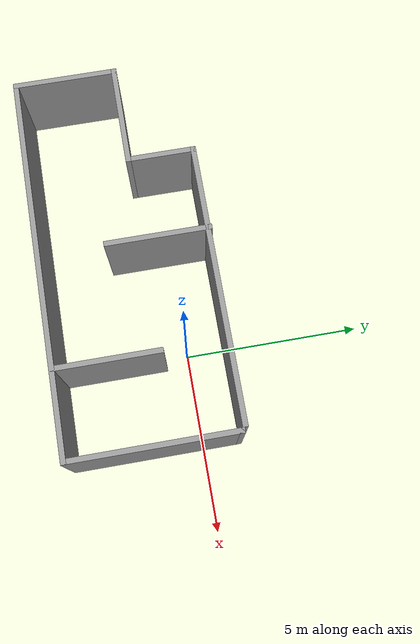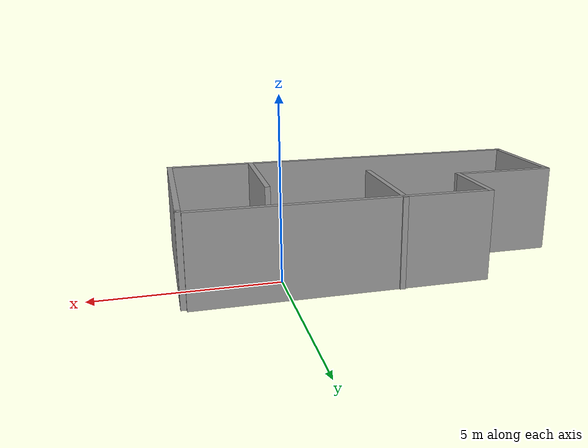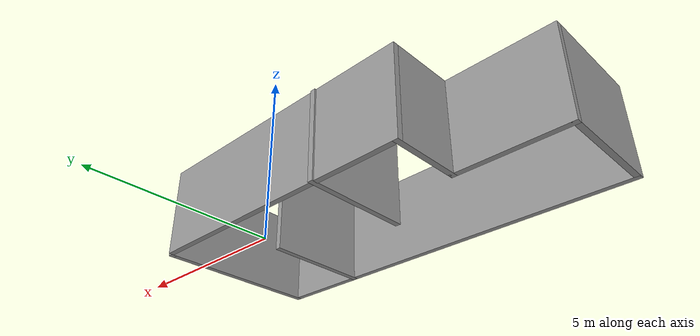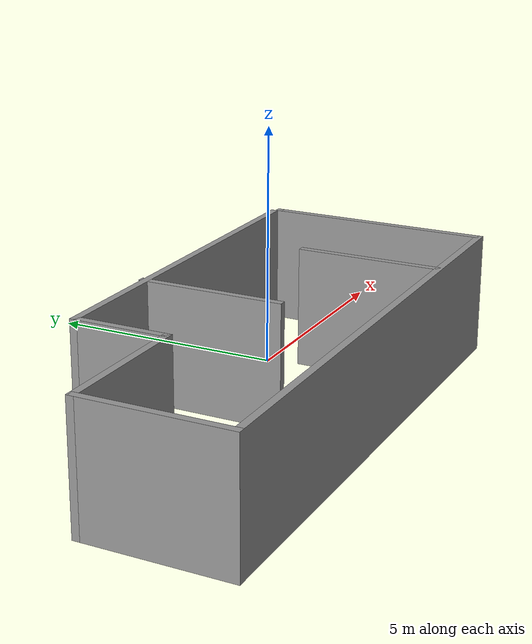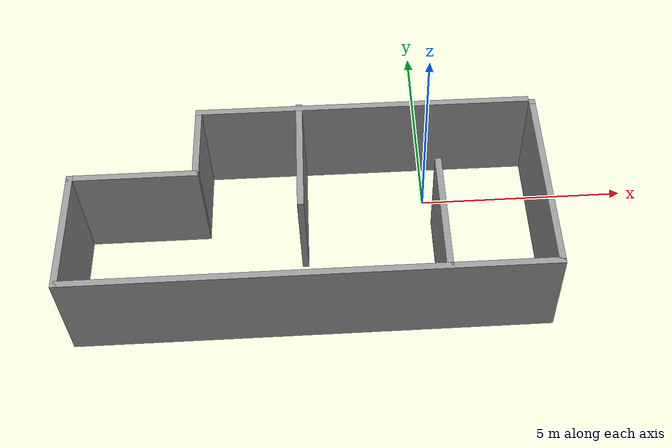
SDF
<?xml version='1.0'?>
<sdf version='1.7'>
  <model name='room'>
    <pose>-2.77075 -1.21274 0 0 -0 0</pose>
    <link name='Wall_1'>
      <collision name='Wall_1_Collision'>
        <geometry>
          <box>
            <size>8 0.15 2.5</size>
          </box>
        </geometry>
        <pose>0 0 1.25 0 -0 0</pose>
      </collision>
      <visual name='Wall_1_Visual'>
        <pose>0 0 1.25 0 -0 0</pose>
        <geometry>
          <box>
            <size>8 0.15 2.5</size>
          </box>
        </geometry>
        <material>
          <script>
            <uri>file://media/materials/scripts/gazebo.material</uri>
            <name>Gazebo/Grey</name>
          </script>
          <ambient>1 1 1 1</ambient>
        </material>
        <meta>
          <layer>0</layer>
        </meta>
      </visual>
      <pose>1.35 2.32884 0 0 -0 3.14159</pose>
    </link>
    <link name='Wall_11'>
      <collision name='Wall_11_Collision'>
        <geometry>
          <box>
            <size>3 0.15 2.5</size>
          </box>
        </geometry>
        <pose>0 0 1.25 0 -0 0</pose>
      </collision>
      <visual name='Wall_11_Visual'>
        <pose>0 0 1.25 0 -0 0</pose>
        <geometry>
          <box>
            <size>3 0.15 2.5</size>
          </box>
        </geometry>
        <material>
          <script>
            <uri>file://media/materials/scripts/gazebo.material</uri>
            <name>Gazebo/Grey</name>
          </script>
          <ambient>1 1 1 1</ambient>
        </material>
        <meta>
          <layer>0</layer>
        </meta>
      </visual>
      <pose>-0.185568 0.946157 0 0 -0 -1.5708</pose>
    </link>
    <link name='Wall_14'>
      <collision name='Wall_14_Collision'>
        <geometry>
          <box>
            <size>3 0.15 2.5</size>
          </box>
        </geometry>
        <pose>0 0 1.25 0 -0 0</pose>
      </collision>
      <visual name='Wall_14_Visual'>
        <pose>0 0 1.25 0 -0 0</pose>
        <geometry>
          <box>
            <size>3 0.15 2.5</size>
          </box>
        </geometry>
        <material>
          <script>
            <uri>file://media/materials/scripts/gazebo.material</uri>
            <name>Gazebo/Grey</name>
          </script>
          <ambient>1 1 1 1</ambient>
        </material>
        <meta>
          <layer>0</layer>
        </meta>
      </visual>
      <pose>3.00166 -0.911943 0 0 -0 1.5708</pose>
    </link>
    <link name='Wall_2'>
      <collision name='Wall_2_Collision'>
        <geometry>
          <box>
            <size>2 0.15 2.5</size>
          </box>
        </geometry>
        <pose>0 0 1.25 0 -0 0</pose>
      </collision>
      <visual name='Wall_2_Visual'>
        <pose>0 0 1.25 0 -0 0</pose>
        <geometry>
          <box>
            <size>2 0.15 2.5</size>
          </box>
        </geometry>
        <material>
          <script>
            <uri>file://media/materials/scripts/gazebo.material</uri>
            <name>Gazebo/Grey</name>
          </script>
          <ambient>1 1 1 1</ambient>
        </material>
        <meta>
          <layer>0</layer>
        </meta>
      </visual>
      <pose>-2.575 1.40384 0 0 -0 -1.5708</pose>
    </link>
    <link name='Wall_3'>
      <collision name='Wall_3_Collision'>
        <geometry>
          <box>
            <size>3 0.15 2.5</size>
          </box>
        </geometry>
        <pose>0 0 1.25 0 -0 0</pose>
      </collision>
      <visual name='Wall_3_Visual'>
        <pose>0 0 1.25 0 -0 0</pose>
        <geometry>
          <box>
            <size>3 0.15 2.5</size>
          </box>
        </geometry>
        <material>
          <script>
            <uri>file://media/materials/scripts/gazebo.material</uri>
            <name>Gazebo/Grey</name>
          </script>
          <ambient>1 1 1 1</ambient>
        </material>
        <meta>
          <layer>0</layer>
        </meta>
      </visual>
      <pose>-4 0.478843 0 0 -0 3.14159</pose>
    </link>
    <link name='Wall_4'>
      <collision name='Wall_4_Collision'>
        <geometry>
          <box>
            <size>3 0.15 2.5</size>
          </box>
        </geometry>
        <pose>0 0 1.25 0 -0 0</pose>
      </collision>
      <visual name='Wall_4_Visual'>
        <pose>0 0 1.25 0 -0 0</pose>
        <geometry>
          <box>
            <size>3 0.15 2.5</size>
          </box>
        </geometry>
        <material>
          <script>
            <uri>file://media/materials/scripts/gazebo.material</uri>
            <name>Gazebo/Grey</name>
          </script>
          <ambient>1 1 1 1</ambient>
        </material>
        <meta>
          <layer>0</layer>
        </meta>
      </visual>
      <pose>-5.425 -0.946157 0 0 -0 -1.5708</pose>
    </link>
    <link name='Wall_5'>
      <collision name='Wall_5_Collision'>
        <geometry>
          <box>
            <size>11 0.15 2.5</size>
          </box>
        </geometry>
        <pose>0 0 1.25 0 -0 0</pose>
      </collision>
      <visual name='Wall_5_Visual'>
        <pose>0 0 1.25 0 -0 0</pose>
        <geometry>
          <box>
            <size>11 0.15 2.5</size>
          </box>
        </geometry>
        <material>
          <script>
            <uri>file://media/materials/scripts/gazebo.material</uri>
            <name>Gazebo/Grey</name>
          </script>
          <ambient>1 1 1 1</ambient>
        </material>
        <meta>
          <layer>0</layer>
        </meta>
      </visual>
      <pose>-0 -2.37116 0 0 -0 0</pose>
    </link>
    <link name='Wall_6'>
      <collision name='Wall_6_Collision'>
        <geometry>
          <box>
            <size>4.75 0.15 2.5</size>
          </box>
        </geometry>
        <pose>0 0 1.25 0 -0 0</pose>
      </collision>
      <visual name='Wall_6_Visual'>
        <pose>0 0 1.25 0 -0 0</pose>
        <geometry>
          <box>
            <size>4.75 0.15 2.5</size>
          </box>
        </geometry>
        <material>
          <script>
            <uri>file://media/materials/scripts/gazebo.material</uri>
            <name>Gazebo/Grey</name>
          </script>
          <ambient>1 1 1 1</ambient>
        </material>
        <meta>
          <layer>0</layer>
        </meta>
      </visual>
      <pose>5.425 -0.071157 0 0 -0 1.5708</pose>
    </link>
    <link name='Wall_7'>
      <collision name='Wall_7_Collision'>
        <geometry>
          <box>
            <size>0.15 0.15 2.5</size>
          </box>
        </geometry>
        <pose>0 0 1.25 0 -0 0</pose>
      </collision>
      <visual name='Wall_7_Visual'>
        <pose>0 0 1.25 0 -0 0</pose>
        <geometry>
          <box>
            <size>0.15 0.15 2.5</size>
          </box>
        </geometry>
        <material>
          <script>
            <uri>file://media/materials/scripts/gazebo.material</uri>
            <name>Gazebo/Grey</name>
          </script>
          <ambient>1 1 1 1</ambient>
        </material>
        <meta>
          <layer>0</layer>
        </meta>
      </visual>
      <pose>5.425 2.22884 0 0 -0 0</pose>
    </link>
    <link name='Wall_8'>
      <collision name='Wall_8_Collision'>
        <geometry>
          <box>
            <size>0.15 0.15 2.5</size>
          </box>
        </geometry>
        <pose>0 0 1.25 0 -0 0</pose>
      </collision>
      <visual name='Wall_8_Visual'>
        <pose>0 0 1.25 0 -0 0</pose>
        <geometry>
          <box>
            <size>0.15 0.15 2.5</size>
          </box>
        </geometry>
        <material>
          <script>
            <uri>file://media/materials/scripts/gazebo.material</uri>
            <name>Gazebo/Grey</name>
          </script>
          <ambient>1 1 1 1</ambient>
        </material>
        <meta>
          <layer>0</layer>
        </meta>
      </visual>
      <pose>5.425 2.22884 0 0 -0 0</pose>
    </link>
    <static>1</static>
  </model>
</sdf>
